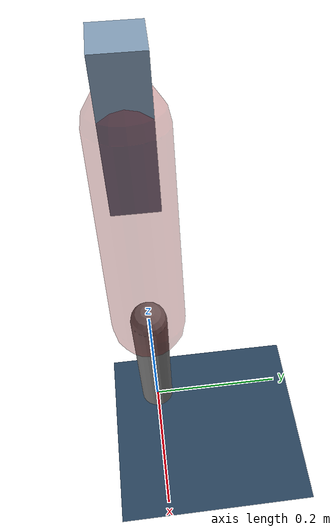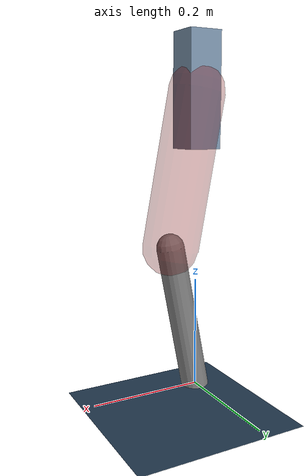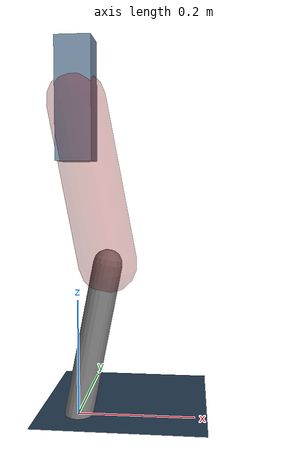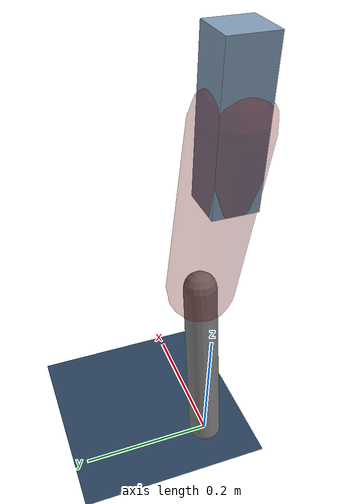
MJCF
<mujoco model="Hopper2D">
	<compiler inertiafromgeom="true" angle="radian" />
	<option timestep="0.001" integrator="implicit" cone="elliptic" solver="Newton" tolerance="1e-10" />

	<default>
		<geom contype="1" conaffinity="1" condim="3" friction="2 0.005 0.0001" solref="0.005 1" />
		<joint limited="true" damping="0.1" />
	</default>

	<asset>
		<texture name="skybox" type="skybox" builtin="gradient" rgb1=".4 .6 .8" rgb2="0 0 0" width="800" height="800" />
		<texture name="grid" type="2d" builtin="checker" rgb1=".1 .2 .3" rgb2=".2 .3 .4" width="300" height="300" mark="edge" markrgb=".2 .3 .4" />
		<material name="ground" texture="grid" texrepeat="1 1" texuniform="true" reflectance="0.1" />
		<material name="leg" rgba="0.5 0.6 0.7 1" />
	</asset>

	<worldbody>

		<geom name="floor" type="plane" size="5 5 0.25" material="ground" />

		<light directional="false" diffuse="0.8 0.8 0.8" specular="0.3 0.3 0.3" pos="0 0 2" dir="0 0 -1" />
		<light mode="targetbodycom" target="base" directional="false" diffuse="0.8 0.8 0.8" specular="0.3 0.3 0.3" pos="0 0 2" dir="0 0 -1" />

		<camera name="fixed" pos="0 -2 1" xyaxes="1 0 0 0 0 1" />
		<camera name="tracking" mode="trackcom" pos="0 -3 1" />

		<body name="root" pos="0 0 0.5362698348096782">
			<joint name="slide_x" type="slide" axis="1 0 0" range="-100 100" />
			<joint name="slide_z" type="slide" axis="0 0 1" range="0 10" />

			<body name="base" pos="0 0 0">
				<geom name="torso" type="box" size="0.03 0.03 0.1" mass="2.338" material="leg" />

				<body name="link1" pos="0 0 0" euler="0 1.3820973934042187 0">
					<joint type="hinge" axis="0 -1 0" pos="0 0 0" name="hinge1" limited="true" range="-3.14 3.14" stiffness="0" damping="0.1" />
					<geom name="thigh" type="capsule" fromto="0 0 0 0.27730038013374636 0 0" size="0.05" rgba="0.5 0 0 0.3" mass="0.9279809883477405" />

					<body name="link2" pos="0.27730038013374636 0 0" euler="0 0.38331628580814114 0">
						<joint type="hinge" axis="0 -1 0" pos="0 0 0" name="hinge2" limited="true" range="-3.14 3.14" stiffness="0" damping="0.1" />
						<geom name="shank" type="capsule" fromto="0 0 0 0.26896945467593186 0 0" size="0.025" mass="0.4580755637407455" />

					</body>
				</body>
			</body>
		</body>
	</worldbody>

	<actuator>
		<motor name="torque1" joint="hinge1" ctrlrange="-29.021649721318823 29.021649721318823" ctrllimited="true" gear="1" />
		<motor name="torque2" joint="hinge2" ctrlrange="-77.71655209560151 77.71655209560151" ctrllimited="true" gear="1" />
	</actuator>
</mujoco>
